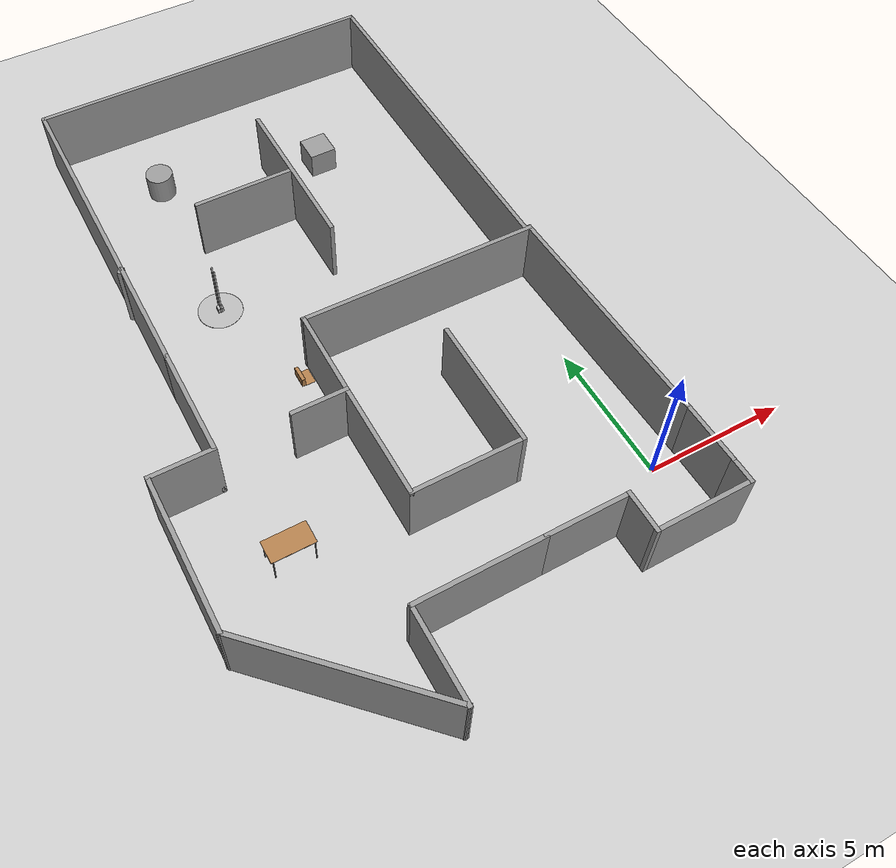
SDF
<sdf version="1.7">
 <world name="default">
  <light name="sun" type="directional">
   <pose>0 0 10 0 -0 0</pose>
   <diffuse>0.8 0.8 0.8 1</diffuse>
   <specular>0.2 0.2 0.2 1</specular>
   <attenuation>
    <range>1000</range>
    <constant>0.9</constant>
    <linear>0.01</linear>
    <quadratic>0.001</quadratic>
   </attenuation>
   <direction>-0.5 0.1 -0.9</direction>
   <spot><inner_angle>0</inner_angle><outer_angle>0</outer_angle><falloff>0</falloff></spot>
  </light>
  <model name="ground_plane">
   <static>1</static>
   <link name="link">
    <collision name="collision">
     <geometry><plane><normal>0 0 1</normal><size>100 100</size></plane></geometry>
     <surface><friction><ode><mu>100</mu><mu2>50</mu2></ode></friction></surface>
    </collision>
    <visual name="visual">
     <cast_shadows>0</cast_shadows>
     <geometry><plane><normal>0 0 1</normal><size>100 100</size></plane></geometry>
     <material>
      <script><uri>file://media/materials/scripts/gazebo.material</uri><name>Gazebo/Grey</name></script>
     </material>
    </visual>
   </link>
  </model>
  <gravity>0 0 -9.8</gravity>
  <magnetic_field>6e-06 2.3e-05 -4.2e-05</magnetic_field>
  <atmosphere type="adiabatic"/>
  <physics type="ode">
   <max_step_size>0.001</max_step_size>
   <real_time_factor>1</real_time_factor>
   <real_time_update_rate>1000</real_time_update_rate>
  </physics>
  <scene><ambient>0.4 0.4 0.4 1</ambient><background>0.7 0.7 0.7 1</background><shadows>1</shadows></scene>
  <audio><device>default</device></audio>
  <spherical_coordinates>
   <surface_model>EARTH_WGS84</surface_model>
   <latitude_deg>0</latitude_deg>
   <longitude_deg>0</longitude_deg>
   <elevation>0</elevation>
   <heading_deg>0</heading_deg>
  </spherical_coordinates>
  <model name="seminar_world">
   <pose>-6.63188 8.85131 0 0 -0 0</pose>
   <link name="Wall_0">
    <collision name="Wall_0_Collision">
     <geometry><box><size>2.17037 0.15 2.5</size></box></geometry>
     <pose>0 0 1.25 0 -0 0</pose>
    </collision>
    <visual name="Wall_0_Visual">
     <pose>0 0 1.25 0 -0 0</pose>
     <geometry><box><size>2.17037 0.15 2.5</size></box></geometry>
     <material>
      <script><uri>file://media/materials/scripts/gazebo.material</uri><name>Gazebo/Grey</name></script>
      <ambient>1 1 1 1</ambient>
     </material>
     <meta><layer>0</layer></meta>
    </visual>
    <pose>7.69858 -9.62121 0 0 -0 -1.55763</pose>
   </link>
   <link name="Wall_10">
    <collision name="Wall_10_Collision">
     <geometry><box><size>2.25 0.15 2.5</size></box></geometry>
     <pose>0 0 1.25 0 -0 0</pose>
    </collision>
    <visual name="Wall_10_Visual">
     <pose>0 0 1.25 0 -0 0</pose>
     <geometry><box><size>2.25 0.15 2.5</size></box></geometry>
     <material>
      <script><uri>file://media/materials/scripts/gazebo.material</uri><name>Gazebo/Grey</name></script>
      <ambient>1 1 1 1</ambient>
     </material>
     <meta><layer>0</layer></meta>
    </visual>
    <pose>-6.6318 -3.03763 0 0 -0 0</pose>
   </link>
   <link name="Wall_13">
    <collision name="Wall_13_Collision">
     <geometry><box><size>2 0.15 2.5</size></box></geometry>
     <pose>0 0 1.25 0 -0 0</pose>
    </collision>
    <visual name="Wall_13_Visual">
     <pose>0 0 1.25 0 -0 0</pose>
     <geometry><box><size>2 0.15 2.5</size></box></geometry>
     <material>
      <script><uri>file://media/materials/scripts/gazebo.material</uri><name>Gazebo/Grey</name></script>
      <ambient>1 1 1 1</ambient>
     </material>
     <meta><layer>0</layer></meta>
    </visual>
    <pose>-2.09158 -2.99787 0 0 -0 0</pose>
   </link>
   <link name="Wall_14">
    <collision name="Wall_14_Collision">
     <geometry><box><size>3.25 0.15 2.5</size></box></geometry>
     <pose>0 0 1.25 0 -0 0</pose>
    </collision>
    <visual name="Wall_14_Visual">
     <pose>0 0 1.25 0 -0 0</pose>
     <geometry><box><size>3.25 0.15 2.5</size></box></geometry>
     <material>
      <script><uri>file://media/materials/scripts/gazebo.material</uri><name>Gazebo/Grey</name></script>
      <ambient>1 1 1 1</ambient>
     </material>
     <meta><layer>0</layer></meta>
    </visual>
    <pose>-1.15336 -1.44787 0 0 -0 1.56226</pose>
   </link>
   <link name="Wall_15">
    <collision name="Wall_15_Collision">
     <geometry><box><size>8.7234 0.15 2.5</size></box></geometry>
     <pose>0 0 1.25 0 -0 0</pose>
    </collision>
    <visual name="Wall_15_Visual">
     <pose>0 0 1.25 0 -0 0</pose>
     <geometry><box><size>8.7234 0.15 2.5</size></box></geometry>
     <material>
      <script><uri>file://media/materials/scripts/gazebo.material</uri><name>Gazebo/Grey</name></script>
      <ambient>1 1 1 1</ambient>
     </material>
     <meta><layer>0</layer></meta>
    </visual>
    <pose>3.13334 0.062229 0 0 -0 -0.009308</pose>
   </link>
   <link name="Wall_19">
    <collision name="Wall_19_Collision">
     <geometry><box><size>8.78751 0.15 2.5</size></box></geometry>
     <pose>0 0 1.25 0 -0 0</pose>
    </collision>
    <visual name="Wall_19_Visual">
     <pose>0 0 1.25 0 -0 0</pose>
     <geometry><box><size>8.78751 0.15 2.5</size></box></geometry>
     <material>
      <script><uri>file://media/materials/scripts/gazebo.material</uri><name>Gazebo/Grey</name></script>
      <ambient>1 1 1 1</ambient>
     </material>
     <meta><layer>0</layer></meta>
    </visual>
    <pose>7.55266 -4.26779 0 0 -0 1.60151</pose>
   </link>
   <link name="Wall_2">
    <collision name="Wall_2_Collision">
     <geometry><box><size>1 0.15 2.5</size></box></geometry>
     <pose>0 0 1.25 0 -0 0</pose>
    </collision>
    <visual name="Wall_2_Visual">
     <pose>0 0 1.25 0 -0 0</pose>
     <geometry><box><size>1 0.15 2.5</size></box></geometry>
     <material>
      <script><uri>file://media/materials/scripts/gazebo.material</uri><name>Gazebo/Grey</name></script>
      <ambient>1 1 1 1</ambient>
     </material>
     <meta><layer>0</layer></meta>
    </visual>
    <pose>7.71188 -11.0563 0 0 -0 -1.5708</pose>
   </link>
   <link name="Wall_21">
    <collision name="Wall_21_Collision">
     <geometry><box><size>4.25 0.15 2.5</size></box></geometry>
     <pose>0 0 1.25 0 -0 0</pose>
    </collision>
    <visual name="Wall_21_Visual">
     <pose>0 0 1.25 0 -0 0</pose>
     <geometry><box><size>4.25 0.15 2.5</size></box></geometry>
     <material>
      <script><uri>file://media/materials/scripts/gazebo.material</uri><name>Gazebo/Grey</name></script>
      <ambient>1 1 1 1</ambient>
     </material>
     <meta><layer>0</layer></meta>
    </visual>
    <pose>-1.16658 -5.04787 0 0 -0 -1.5708</pose>
   </link>
   <link name="Wall_22">
    <collision name="Wall_22_Collision">
     <geometry><box><size>4 0.15 2.5</size></box></geometry>
     <pose>0 0 1.25 0 -0 0</pose>
    </collision>
    <visual name="Wall_22_Visual">
     <pose>0 0 1.25 0 -0 0</pose>
     <geometry><box><size>4 0.15 2.5</size></box></geometry>
     <material>
      <script><uri>file://media/materials/scripts/gazebo.material</uri><name>Gazebo/Grey</name></script>
      <ambient>1 1 1 1</ambient>
     </material>
     <meta><layer>0</layer></meta>
    </visual>
    <pose>0.758417 -7.09787 0 0 -0 0</pose>
   </link>
   <link name="Wall_23">
    <collision name="Wall_23_Collision">
     <geometry><box><size>4.75 0.15 2.5</size></box></geometry>
     <pose>0 0 1.25 0 -0 0</pose>
    </collision>
    <visual name="Wall_23_Visual">
     <pose>0 0 1.25 0 -0 0</pose>
     <geometry><box><size>4.75 0.15 2.5</size></box></geometry>
     <material>
      <script><uri>file://media/materials/scripts/gazebo.material</uri><name>Gazebo/Grey</name></script>
      <ambient>1 1 1 1</ambient>
     </material>
     <meta><layer>0</layer></meta>
    </visual>
    <pose>2.68342 -4.79787 0 0 -0 1.5708</pose>
   </link>
   <link name="Wall_3">
    <collision name="Wall_3_Collision">
     <geometry><box><size>3.5 0.15 2.5</size></box></geometry>
     <pose>0 0 1.25 0 -0 0</pose>
    </collision>
    <visual name="Wall_3_Visual">
     <pose>0 0 1.25 0 -0 0</pose>
     <geometry><box><size>3.5 0.15 2.5</size></box></geometry>
     <material>
      <script><uri>file://media/materials/scripts/gazebo.material</uri><name>Gazebo/Grey</name></script>
      <ambient>1 1 1 1</ambient>
     </material>
     <meta><layer>0</layer></meta>
    </visual>
    <pose>6.03688 -11.4813 0 0 -0 3.14159</pose>
   </link>
   <link name="Wall_4">
    <collision name="Wall_4_Collision">
     <geometry><box><size>1.5 0.15 2.5</size></box></geometry>
     <pose>0 0 1.25 0 -0 0</pose>
    </collision>
    <visual name="Wall_4_Visual">
     <pose>0 0 1.25 0 -0 0</pose>
     <geometry><box><size>1.5 0.15 2.5</size></box></geometry>
     <material>
      <script><uri>file://media/materials/scripts/gazebo.material</uri><name>Gazebo/Grey</name></script>
      <ambient>1 1 1 1</ambient>
     </material>
     <meta><layer>0</layer></meta>
    </visual>
    <pose>4.36188 -10.8063 0 0 -0 1.5708</pose>
   </link>
   <link name="Wall_5">
    <collision name="Wall_5_Collision">
     <geometry><box><size>3 0.15 2.5</size></box></geometry>
     <pose>0 0 1.25 0 -0 0</pose>
    </collision>
    <visual name="Wall_5_Visual">
     <pose>0 0 1.25 0 -0 0</pose>
     <geometry><box><size>3 0.15 2.5</size></box></geometry>
     <material>
      <script><uri>file://media/materials/scripts/gazebo.material</uri><name>Gazebo/Grey</name></script>
      <ambient>1 1 1 1</ambient>
     </material>
     <meta><layer>0</layer></meta>
    </visual>
    <pose>2.93688 -10.1313 0 0 -0 3.14159</pose>
   </link>
   <link name="Wall_6">
    <collision name="Wall_6_Collision">
     <geometry><box><size>4.5 0.15 2.5</size></box></geometry>
     <pose>0 0 1.25 0 -0 0</pose>
    </collision>
    <visual name="Wall_6_Visual">
     <pose>0 0 1.25 0 -0 0</pose>
     <geometry><box><size>4.5 0.15 2.5</size></box></geometry>
     <material>
      <script><uri>file://media/materials/scripts/gazebo.material</uri><name>Gazebo/Grey</name></script>
      <ambient>1 1 1 1</ambient>
     </material>
     <meta><layer>0</layer></meta>
    </visual>
    <pose>-0.663116 -10.1313 0 0 -0 3.14159</pose>
   </link>
   <link name="Wall_7">
    <collision name="Wall_7_Collision">
     <geometry><box><size>3.25 0.15 2.5</size></box></geometry>
     <pose>0 0 1.25 0 -0 0</pose>
    </collision>
    <visual name="Wall_7_Visual">
     <pose>0 0 1.25 0 -0 0</pose>
     <geometry><box><size>3.25 0.15 2.5</size></box></geometry>
     <material>
      <script><uri>file://media/materials/scripts/gazebo.material</uri><name>Gazebo/Grey</name></script>
      <ambient>1 1 1 1</ambient>
     </material>
     <meta><layer>0</layer></meta>
    </visual>
    <pose>-2.83812 -11.6813 0 0 -0 -1.5708</pose>
   </link>
   <link name="Wall_76">
    <collision name="Wall_76_Collision">
     <geometry><box><size>4 0.15 2.5</size></box></geometry>
     <pose>0 0 1.25 0 -0 0</pose>
    </collision>
    <visual name="Wall_76_Visual">
     <pose>0 0 1.25 0 -0 0</pose>
     <geometry><box><size>4 0.15 2.5</size></box></geometry>
     <material>
      <script><uri>file://media/materials/scripts/gazebo.material</uri><name>Gazebo/Grey</name></script>
      <ambient>1 1 1 1</ambient>
     </material>
     <meta><layer>0</layer></meta>
    </visual>
    <pose>-5.5818 -1.11263 0 0 -0 1.5708</pose>
   </link>
   <link name="Wall_78">
    <collision name="Wall_78_Collision">
     <geometry><box><size>4.25 0.15 2.5</size></box></geometry>
     <pose>0 0 1.25 0 -0 0</pose>
    </collision>
    <visual name="Wall_78_Visual">
     <pose>0 0 1.25 0 -0 0</pose>
     <geometry><box><size>4.25 0.15 2.5</size></box></geometry>
     <material>
      <script><uri>file://media/materials/scripts/gazebo.material</uri><name>Gazebo/Grey</name></script>
      <ambient>1 1 1 1</ambient>
     </material>
     <meta><layer>0</layer></meta>
    </visual>
    <pose>-5.5818 2.86237 0 0 -0 1.5708</pose>
   </link>
   <link name="Wall_8">
    <collision name="Wall_8_Collision">
     <geometry><box><size>7 0.15 2.5</size></box></geometry>
     <pose>0 0 1.25 0 -0 0</pose>
    </collision>
    <visual name="Wall_8_Visual">
     <pose>0 0 1.25 0 -0 0</pose>
     <geometry><box><size>7 0.15 2.5</size></box></geometry>
     <material>
      <script><uri>file://media/materials/scripts/gazebo.material</uri><name>Gazebo/Grey</name></script>
      <ambient>1 1 1 1</ambient>
     </material>
     <meta><layer>0</layer></meta>
    </visual>
    <pose>-5.25996 -10.8095 0 0 -0 2.35619</pose>
   </link>
   <link name="Wall_80">
    <collision name="Wall_80_Collision">
     <geometry><box><size>0.282045 0.15 2.5</size></box></geometry>
     <pose>0 0 1.25 0 -0 0</pose>
    </collision>
    <visual name="Wall_80_Visual">
     <pose>0 0 1.25 0 -0 0</pose>
     <geometry><box><size>0.282045 0.15 2.5</size></box></geometry>
     <material>
      <script><uri>file://media/materials/scripts/gazebo.material</uri><name>Gazebo/Grey</name></script>
      <ambient>1 1 1 1</ambient>
     </material>
     <meta><layer>0</layer></meta>
    </visual>
    <pose>-5.6253 4.86271 0 0 -0 -2.29018</pose>
   </link>
   <link name="Wall_82">
    <collision name="Wall_82_Collision">
     <geometry><box><size>6.25 0.15 2.5</size></box></geometry>
     <pose>0 0 1.25 0 -0 0</pose>
    </collision>
    <visual name="Wall_82_Visual">
     <pose>0 0 1.25 0 -0 0</pose>
     <geometry><box><size>6.25 0.15 2.5</size></box></geometry>
     <material>
      <script><uri>file://media/materials/scripts/gazebo.material</uri><name>Gazebo/Grey</name></script>
      <ambient>1 1 1 1</ambient>
     </material>
     <meta><layer>0</layer></meta>
    </visual>
    <pose>1.43119 6.36305 0 0 -0 1.5708</pose>
   </link>
   <link name="Wall_87">
    <collision name="Wall_87_Collision">
     <geometry><box><size>8.5 0.15 2.5</size></box></geometry>
     <pose>0 0 1.25 0 -0 0</pose>
    </collision>
    <visual name="Wall_87_Visual">
     <pose>0 0 1.25 0 -0 0</pose>
     <geometry><box><size>8.5 0.15 2.5</size></box></geometry>
     <material>
      <script><uri>file://media/materials/scripts/gazebo.material</uri><name>Gazebo/Grey</name></script>
      <ambient>1 1 1 1</ambient>
     </material>
     <meta><layer>0</layer></meta>
    </visual>
    <pose>-5.5818 9.08737 0 0 -0 1.5708</pose>
   </link>
   <link name="Wall_88">
    <collision name="Wall_88_Collision">
     <geometry><box><size>13 0.15 2.5</size></box></geometry>
     <pose>0 0 1.25 0 -0 0</pose>
    </collision>
    <visual name="Wall_88_Visual">
     <pose>0 0 1.25 0 -0 0</pose>
     <geometry><box><size>13 0.15 2.5</size></box></geometry>
     <material>
      <script><uri>file://media/materials/scripts/gazebo.material</uri><name>Gazebo/Grey</name></script>
      <ambient>1 1 1 1</ambient>
     </material>
     <meta><layer>0</layer></meta>
    </visual>
    <pose>0.843202 13.2624 0 0 -0 0</pose>
   </link>
   <link name="Wall_89">
    <collision name="Wall_89_Collision">
     <geometry><box><size>13.25 0.15 2.5</size></box></geometry>
     <pose>0 0 1.25 0 -0 0</pose>
    </collision>
    <visual name="Wall_89_Visual">
     <pose>0 0 1.25 0 -0 0</pose>
     <geometry><box><size>13.25 0.15 2.5</size></box></geometry>
     <material>
      <script><uri>file://media/materials/scripts/gazebo.material</uri><name>Gazebo/Grey</name></script>
      <ambient>1 1 1 1</ambient>
     </material>
     <meta><layer>0</layer></meta>
    </visual>
    <pose>7.2682 6.71237 0 0 -0 -1.5708</pose>
   </link>
   <link name="Wall_9">
    <collision name="Wall_9_Collision">
     <geometry><box><size>5.5 0.15 2.5</size></box></geometry>
     <pose>0 0 1.25 0 -0 0</pose>
    </collision>
    <visual name="Wall_9_Visual">
     <pose>0 0 1.25 0 -0 0</pose>
     <geometry><box><size>5.5 0.15 2.5</size></box></geometry>
     <material>
      <script><uri>file://media/materials/scripts/gazebo.material</uri><name>Gazebo/Grey</name></script>
      <ambient>1 1 1 1</ambient>
     </material>
     <meta><layer>0</layer></meta>
    </visual>
    <pose>-7.6818 -5.71263 0 0 -0 1.5708</pose>
   </link>
   <link name="Wall_91">
    <collision name="Wall_91_Collision">
     <geometry><box><size>3.75 0.15 2.5</size></box></geometry>
     <pose>0 0 1.25 0 -0 0</pose>
    </collision>
    <visual name="Wall_91_Visual">
     <pose>0 0 1.25 0 -0 0</pose>
     <geometry><box><size>3.75 0.15 2.5</size></box></geometry>
     <material>
      <script><uri>file://media/materials/scripts/gazebo.material</uri><name>Gazebo/Grey</name></script>
      <ambient>1 1 1 1</ambient>
     </material>
     <meta><layer>0</layer></meta>
    </visual>
    <pose>-0.428544 6.46551 0 0 -0 3.14159</pose>
   </link>
   <static>1</static>
  </model>
  <model name="table">
   <static>1</static>
   <link name="link">
    <collision name="surface">
     <pose>0 0 1 0 -0 0</pose>
     <geometry><box><size>1.5 0.8 0.03</size></box></geometry>
     <surface><friction><ode><mu>0.6</mu><mu2>0.6</mu2></ode></friction></surface>
    </collision>
    <visual name="visual1">
     <pose>0 0 1 0 -0 0</pose>
     <geometry><box><size>1.5 0.8 0.03</size></box></geometry>
     <material>
      <script><uri>file://media/materials/scripts/gazebo.material</uri><name>Gazebo/Wood</name></script>
     </material>
    </visual>
    <collision name="front_left_leg">
     <pose>0.68 0.38 0.5 0 -0 0</pose>
     <geometry><cylinder><radius>0.02</radius><length>1</length></cylinder></geometry>
    </collision>
    <visual name="front_left_leg">
     <pose>0.68 0.38 0.5 0 -0 0</pose>
     <geometry><cylinder><radius>0.02</radius><length>1</length></cylinder></geometry>
     <material>
      <script><uri>file://media/materials/scripts/gazebo.material</uri><name>Gazebo/Grey</name></script>
     </material>
    </visual>
    <collision name="front_right_leg">
     <pose>0.68 -0.38 0.5 0 -0 0</pose>
     <geometry><cylinder><radius>0.02</radius><length>1</length></cylinder></geometry>
    </collision>
    <visual name="front_right_leg">
     <pose>0.68 -0.38 0.5 0 -0 0</pose>
     <geometry><cylinder><radius>0.02</radius><length>1</length></cylinder></geometry>
     <material>
      <script><uri>file://media/materials/scripts/gazebo.material</uri><name>Gazebo/Grey</name></script>
     </material>
    </visual>
    <collision name="back_right_leg">
     <pose>-0.68 -0.38 0.5 0 -0 0</pose>
     <geometry><cylinder><radius>0.02</radius><length>1</length></cylinder></geometry>
    </collision>
    <visual name="back_right_leg">
     <pose>-0.68 -0.38 0.5 0 -0 0</pose>
     <geometry><cylinder><radius>0.02</radius><length>1</length></cylinder></geometry>
     <material>
      <script><uri>file://media/materials/scripts/gazebo.material</uri><name>Gazebo/Grey</name></script>
     </material>
    </visual>
    <collision name="back_left_leg">
     <pose>-0.68 0.38 0.5 0 -0 0</pose>
     <geometry><cylinder><radius>0.02</radius><length>1</length></cylinder></geometry>
    </collision>
    <visual name="back_left_leg">
     <pose>-0.68 0.38 0.5 0 -0 0</pose>
     <geometry><cylinder><radius>0.02</radius><length>1</length></cylinder></geometry>
     <material>
      <script><uri>file://media/materials/scripts/gazebo.material</uri><name>Gazebo/Grey</name></script>
     </material>
    </visual>
   </link>
   <pose>-11.3504 2.73012 0 0 -0 0</pose>
  </model>
  <model name="wooden_case">
   <link name="base">
    <pose>0 0 0.024 0 -0 0</pose>
    <inertial>
     <pose>-0.022184 0 0.171592 0 -0 0</pose>
     <mass>3.96264</mass>
     <inertia>
      <ixx>0.213536</ixx>
      <ixy>0</ixy>
      <ixz>0.000779377</ixz>
      <iyy>0.0708943</iyy>
      <iyz>0</iyz>
      <izz>0.154604</izz>
     </inertia>
    </inertial>
    <collision name="collision_back">
     <pose>-0.053975 0 0.1778 0 -0 0</pose>
     <geometry><box><size>0.01905 0.5461 0.3175</size></box></geometry>
     <surface>
      <contact>
       <poissons_ratio>0.347</poissons_ratio>
       <elastic_modulus>8.8e+09</elastic_modulus>
       <ode><kp>100000</kp><kd>100</kd><max_vel>100</max_vel><min_depth>0.001</min_depth></ode>
      </contact>
      <friction>
       <torsional>
        <coefficient>1</coefficient>
        <use_patch_radius>0</use_patch_radius>
        <surface_radius>0.01</surface_radius>
       </torsional>
      </friction>
     </surface>
    </collision>
    <visual name="visual_back">
     <pose>-0.053975 0 0.1778 0 -0 0</pose>
     <geometry><box><size>0.01905 0.5461 0.3175</size></box></geometry>
     <material>
      <script><uri>file://media/materials/scripts/gazebo.material</uri><name>Gazebo/Wood</name></script>
     </material>
    </visual>
    <collision name="collision_bottom">
     <pose>0 0 0.009525 0 -0 0</pose>
     <geometry><box><size>0.127 0.5842 0.01905</size></box></geometry>
     <surface>
      <contact>
       <poissons_ratio>0.347</poissons_ratio>
       <elastic_modulus>8.8e+09</elastic_modulus>
       <ode><kp>100000</kp><kd>100</kd><max_vel>100</max_vel><min_depth>0.001</min_depth></ode>
      </contact>
      <friction>
       <torsional>
        <coefficient>1</coefficient>
        <use_patch_radius>0</use_patch_radius>
        <surface_radius>0.01</surface_radius>
       </torsional>
      </friction>
     </surface>
    </collision>
    <visual name="visual_bottom">
     <pose>0 0 0.009525 0 -0 0</pose>
     <geometry><box><size>0.127 0.5842 0.01905</size></box></geometry>
     <material>
      <script><uri>file://media/materials/scripts/gazebo.material</uri><name>Gazebo/Wood</name></script>
     </material>
    </visual>
    <collision name="collision_top">
     <pose>0 0 0.346075 0 -0 0</pose>
     <geometry><box><size>0.127 0.5842 0.01905</size></box></geometry>
     <surface>
      <contact>
       <poissons_ratio>0.347</poissons_ratio>
       <elastic_modulus>8.8e+09</elastic_modulus>
       <ode><kp>100000</kp><kd>100</kd><max_vel>100</max_vel><min_depth>0.001</min_depth></ode>
      </contact>
      <friction>
       <torsional>
        <coefficient>1</coefficient>
        <use_patch_radius>0</use_patch_radius>
        <surface_radius>0.01</surface_radius>
       </torsional>
      </friction>
     </surface>
    </collision>
    <visual name="visual_top">
     <pose>0 0 0.346075 0 -0 0</pose>
     <geometry><box><size>0.127 0.5842 0.01905</size></box></geometry>
     <material>
      <script><uri>file://media/materials/scripts/gazebo.material</uri><name>Gazebo/Wood</name></script>
     </material>
    </visual>
    <collision name="collision_left">
     <pose>0 -0.282575 0.1778 0 -0 0</pose>
     <geometry><box><size>0.127 0.01905 0.3175</size></box></geometry>
     <surface>
      <contact>
       <poissons_ratio>0.347</poissons_ratio>
       <elastic_modulus>8.8e+09</elastic_modulus>
       <ode><kp>100000</kp><kd>100</kd><max_vel>100</max_vel><min_depth>0.001</min_depth></ode>
      </contact>
      <friction>
       <torsional>
        <coefficient>1</coefficient>
        <use_patch_radius>0</use_patch_radius>
        <surface_radius>0.01</surface_radius>
       </torsional>
      </friction>
     </surface>
    </collision>
    <visual name="visual_left">
     <pose>0 -0.282575 0.1778 0 -0 0</pose>
     <geometry><box><size>0.127 0.01905 0.3175</size></box></geometry>
     <material>
      <script><uri>file://media/materials/scripts/gazebo.material</uri><name>Gazebo/Wood</name></script>
     </material>
    </visual>
    <collision name="collision_right">
     <pose>0 0.282575 0.1778 0 -0 0</pose>
     <geometry><box><size>0.127 0.01905 0.3175</size></box></geometry>
     <surface>
      <contact>
       <poissons_ratio>0.347</poissons_ratio>
       <elastic_modulus>8.8e+09</elastic_modulus>
       <ode><kp>100000</kp><kd>100</kd><max_vel>100</max_vel><min_depth>0.001</min_depth></ode>
      </contact>
      <friction>
       <torsional>
        <coefficient>1</coefficient>
        <use_patch_radius>0</use_patch_radius>
        <surface_radius>0.01</surface_radius>
       </torsional>
      </friction>
     </surface>
    </collision>
    <visual name="visual_right">
     <pose>0 0.282575 0.1778 0 -0 0</pose>
     <geometry><box><size>0.127 0.01905 0.3175</size></box></geometry>
     <material>
      <script><uri>file://media/materials/scripts/gazebo.material</uri><name>Gazebo/Wood</name></script>
     </material>
    </visual>
    <collision name="collision_block_left">
     <pose>0.0095 -0.2151 -0.012 0 -0 0</pose>
     <geometry><box><size>0.108 0.05 0.024</size></box></geometry>
     <surface>
      <contact>
       <poissons_ratio>0.347</poissons_ratio>
       <elastic_modulus>8.8e+09</elastic_modulus>
       <ode><kp>100000</kp><kd>100</kd><max_vel>100</max_vel><min_depth>0.001</min_depth></ode>
      </contact>
      <friction>
       <torsional>
        <coefficient>1</coefficient>
        <use_patch_radius>0</use_patch_radius>
        <surface_radius>0.01</surface_radius>
       </torsional>
      </friction>
     </surface>
    </collision>
    <visual name="visual_block_left">
     <pose>0.0095 -0.2151 -0.012 0 -0 0</pose>
     <geometry><box><size>0.108 0.05 0.024</size></box></geometry>
     <material>
      <script><uri>file://media/materials/scripts/gazebo.material</uri><name>Gazebo/Wood</name></script>
     </material>
    </visual>
    <collision name="collision_block_right">
     <pose>0.0095 0.2151 -0.012 0 -0 0</pose>
     <geometry><box><size>0.108 0.05 0.024</size></box></geometry>
     <surface>
      <contact>
       <poissons_ratio>0.347</poissons_ratio>
       <elastic_modulus>8.8e+09</elastic_modulus>
       <ode><kp>100000</kp><kd>100</kd><max_vel>100</max_vel><min_depth>0.001</min_depth></ode>
      </contact>
      <friction>
       <torsional>
        <coefficient>1</coefficient>
        <use_patch_radius>0</use_patch_radius>
        <surface_radius>0.01</surface_radius>
       </torsional>
      </friction>
     </surface>
    </collision>
    <visual name="visual_block_right">
     <pose>0.0095 0.2151 -0.012 0 -0 0</pose>
     <geometry><box><size>0.108 0.05 0.024</size></box></geometry>
     <material>
      <script><uri>file://media/materials/scripts/gazebo.material</uri><name>Gazebo/Wood</name></script>
     </material>
    </visual>
   </link>
   <link name="lid">
    <pose>0.243775 0 0.009525 0 -0 0</pose>
    <inertial>
     <mass>1.97874</mass>
     <inertia>
      <ixx>0.0563367</ixx>
      <ixy>0</ixy>
      <ixz>0</ixz>
      <iyy>0.020911</iyy>
      <iyz>0</iyz>
      <izz>0.0771281</izz>
     </inertia>
    </inertial>
    <collision name="collision">
     <geometry><box><size>0.3556 0.5842 0.01905</size></box></geometry>
     <surface>
      <contact>
       <poissons_ratio>0.347</poissons_ratio>
       <elastic_modulus>8.8e+09</elastic_modulus>
       <ode><kp>100000</kp><kd>100</kd><max_vel>100</max_vel><min_depth>0.001</min_depth></ode>
      </contact>
      <friction>
       <torsional>
        <coefficient>1</coefficient>
        <use_patch_radius>0</use_patch_radius>
        <surface_radius>0.01</surface_radius>
       </torsional>
      </friction>
     </surface>
    </collision>
    <visual name="visual">
     <geometry><box><size>0.3556 0.5842 0.01905</size></box></geometry>
     <material>
      <script><uri>file://media/materials/scripts/gazebo.material</uri><name>Gazebo/Wood</name></script>
     </material>
    </visual>
    <visual name="tee_nut_1">
     <pose>0.122 -0.216 0 0 -0 0</pose>
     <geometry><cylinder><radius>0.00635</radius><length>0.0192405</length></cylinder></geometry>
     <material>
      <script><uri>file://media/materials/scripts/gazebo.material</uri><name>Gazebo/Grey</name></script>
     </material>
    </visual>
    <visual name="tee_nut_2">
     <pose>0.122 -0.088 0 0 -0 0</pose>
     <geometry><cylinder><radius>0.00635</radius><length>0.0192405</length></cylinder></geometry>
     <material>
      <script><uri>file://media/materials/scripts/gazebo.material</uri><name>Gazebo/Grey</name></script>
     </material>
    </visual>
    <visual name="tee_nut_3">
     <pose>0.122 0.088 0 0 -0 0</pose>
     <geometry><cylinder><radius>0.00635</radius><length>0.0192405</length></cylinder></geometry>
     <material>
      <script><uri>file://media/materials/scripts/gazebo.material</uri><name>Gazebo/Grey</name></script>
     </material>
    </visual>
    <visual name="tee_nut_4">
     <pose>0.122 0.216 0 0 -0 0</pose>
     <geometry><cylinder><radius>0.00635</radius><length>0.0192405</length></cylinder></geometry>
     <material>
      <script><uri>file://media/materials/scripts/gazebo.material</uri><name>Gazebo/Grey</name></script>
     </material>
    </visual>
   </link>
   <joint name="lid_hinge" type="revolute">
    <pose>-0.1778 0 0.01905 0 -0 0</pose>
    <parent>base</parent>
    <child>lid</child>
    <axis>
     <xyz>0 1 0</xyz>
     <limit><upper>0.523599</upper><lower>-1.5708</lower></limit>
     <dynamics><spring_reference>0</spring_reference><spring_stiffness>0</spring_stiffness></dynamics>
    </axis>
   </joint>
   <pose>-8.29682 8.48193 -0.001057 0 -0.000429 0</pose>
  </model>
  <model name="unit_cylinder">
   <pose>-9.14945 18.9244 0.499997 3e-06 4e-06 -0</pose>
   <link name="link">
    <inertial>
     <mass>1</mass>
     <inertia><ixx>0.145833</ixx><ixy>0</ixy><ixz>0</ixz><iyy>0.145833</iyy><iyz>0</iyz><izz>0.125</izz></inertia>
    </inertial>
    <collision name="collision">
     <geometry><cylinder><radius>0.5</radius><length>1</length></cylinder></geometry>
    </collision>
    <visual name="visual">
     <geometry><cylinder><radius>0.5</radius><length>1</length></cylinder></geometry>
     <material>
      <script><name>Gazebo/Grey</name><uri>file://media/materials/scripts/gazebo.material</uri></script>
     </material>
    </visual>
   </link>
  </model>
  <model name="unit_box">
   <pose>-3.22848 17.4636 0.499995 -1e-05 -0 0</pose>
   <link name="link">
    <inertial>
     <mass>1</mass>
     <inertia>
      <ixx>0.166667</ixx>
      <ixy>0</ixy>
      <ixz>0</ixz>
      <iyy>0.166667</iyy>
      <iyz>0</iyz>
      <izz>0.166667</izz>
     </inertia>
    </inertial>
    <collision name="collision"><geometry><box><size>1 1 1</size></box></geometry></collision>
    <visual name="visual">
     <geometry><box><size>1 1 1</size></box></geometry>
     <material>
      <script><name>Gazebo/Grey</name><uri>file://media/materials/scripts/gazebo.material</uri></script>
     </material>
    </visual>
   </link>
  </model>
  <model name="mass_on_rails">
   <link name="base">
    <inertial>
     <mass>100</mass>
     <inertia><ixx>1</ixx><ixy>0</ixy><ixz>0</ixz><iyy>1</iyy><iyz>0</iyz><izz>1</izz></inertia>
    </inertial>
    <visual name="vis_base">
     <pose>0 0 0.01 0 -0 0</pose>
     <geometry><cylinder><radius>0.8</radius><length>0.01</length></cylinder></geometry>
    </visual>
    <collision name="col_base">
     <pose>0 0 0.01 0 -0 0</pose>
     <geometry><cylinder><radius>0.8</radius><length>0.01</length></cylinder></geometry>
    </collision>
    <visual name="vis_rail1">
     <pose>0 0.1 1.1 0 -0 0</pose>
     <geometry><box><size>0.05 0.05 2.2</size></box></geometry>
    </visual>
    <collision name="col_rail1">
     <pose>0 0.1 1.1 0 -0 0</pose>
     <geometry><box><size>0.05 0.05 2.2</size></box></geometry>
    </collision>
    <visual name="vis_rail2">
     <pose>0 -0.1 1.1 0 -0 0</pose>
     <geometry><box><size>0.05 0.05 2.2</size></box></geometry>
    </visual>
    <collision name="col_rail2">
     <pose>0 -0.1 1.1 0 -0 0</pose>
     <geometry><box><size>0.05 0.05 2.2</size></box></geometry>
    </collision>
   </link>
   <link name="mass">
    <inertial>
     <mass>0.1</mass>
     <pose>0 0 0.1 0 -0 0</pose>
     <inertia><ixx>0.00067</ixx><ixy>0</ixy><ixz>0</ixz><iyy>0.00067</iyy><iyz>0</iyz><izz>0.00067</izz></inertia>
    </inertial>
    <visual name="visual">
     <pose>0 0 0.1 0 -0 0</pose>
     <geometry><box><size>0.2 0.2 0.2</size></box></geometry>
    </visual>
    <collision name="collision">
     <pose>0 0 0.1 0 -0 0</pose>
     <geometry><box><size>0.2 0.2 0.2</size></box></geometry>
    </collision>
   </link>
   <joint name="joint" type="prismatic">
    <parent>base</parent>
    <child>mass</child>
    <axis>
     <dynamics>
      <damping>0.01</damping>
      <friction>0.01</friction>
      <spring_reference>0</spring_reference>
      <spring_stiffness>0</spring_stiffness>
     </dynamics>
     <xyz>0 0 1</xyz>
     <limit><lower>0</lower><upper>2</upper></limit>
    </axis>
   </joint>
   <pose>-9.48721 12.5288 -3e-06 4.6e-05 -0 0</pose>
  </model>
 </world>
</sdf>
